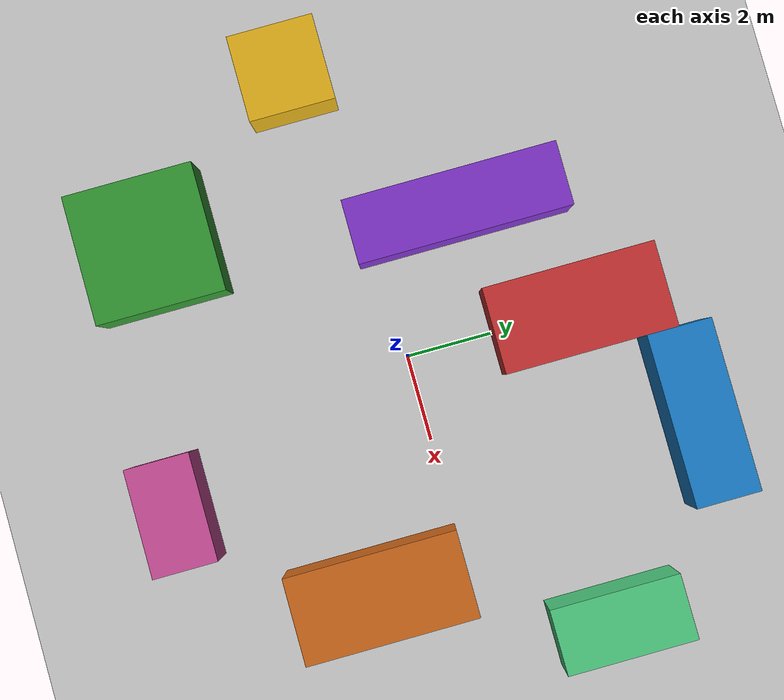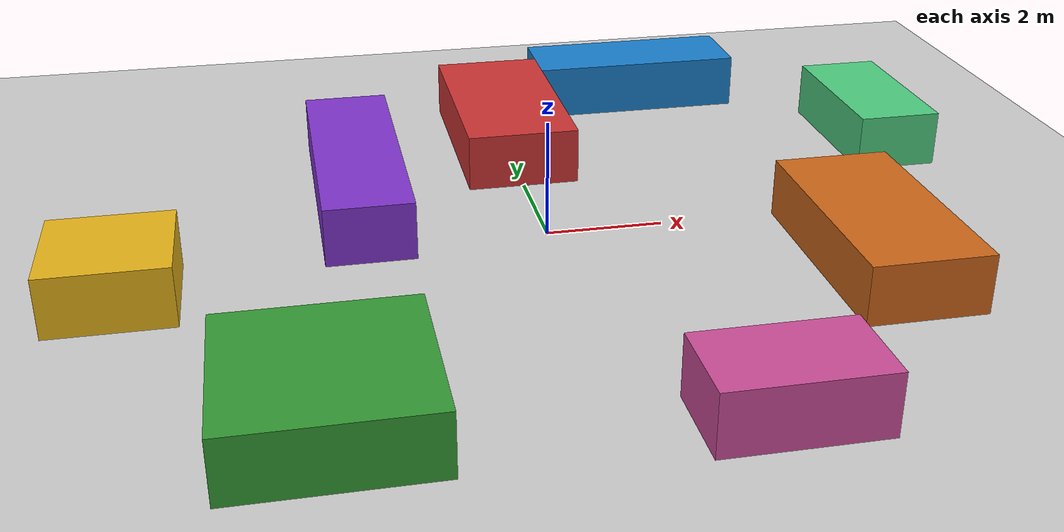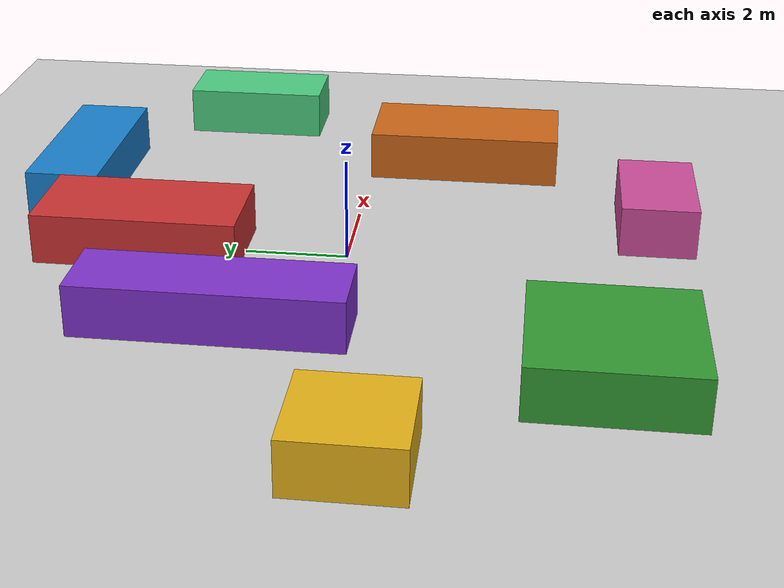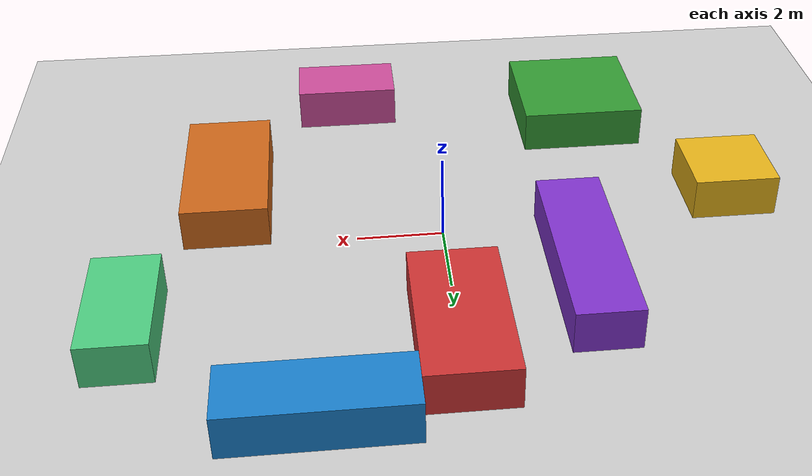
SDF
<?xml version="1.0" ?>
<sdf version="1.7">
<world name="obs_world">

  <include><uri>model://ground_plane</uri></include>
  <include><uri>model://sun</uri></include>

  <!-- obs1: cx=0, cy=4, sx=2, sy=4 -->
  <model name="obs1">
    <static>true</static>
    <pose>0 4 0.5 0 0 0</pose>
    <link name="link">
      <collision name="collision"><geometry><box><size>2 4 1</size></box></geometry></collision>
      <visual name="visual">
        <geometry><box><size>2 4 1</size></box></geometry>
        <material><ambient>0.8 0.2 0.2 1</ambient><diffuse>0.8 0.2 0.2 1</diffuse></material>
      </visual>
    </link>
  </model>

  <!-- obs2: cx=5, cy=-2, sx=2, sy=4 -->
  <model name="obs2">
    <static>true</static>
    <pose>5 -2 0.5 0 0 0</pose>
    <link name="link">
      <collision name="collision"><geometry><box><size>2 4 1</size></box></geometry></collision>
      <visual name="visual">
        <geometry><box><size>2 4 1</size></box></geometry>
        <material><ambient>0.8 0.4 0.1 1</ambient><diffuse>0.8 0.4 0.1 1</diffuse></material>
      </visual>
    </link>
  </model>

  <!-- obs3: cx=-4, cy=-5, sx=3, sy=3 -->
  <model name="obs3">
    <static>true</static>
    <pose>-4 -5 0.5 0 0 0</pose>
    <link name="link">
      <collision name="collision"><geometry><box><size>3 3 1</size></box></geometry></collision>
      <visual name="visual">
        <geometry><box><size>3 3 1</size></box></geometry>
        <material><ambient>0.2 0.6 0.2 1</ambient><diffuse>0.2 0.6 0.2 1</diffuse></material>
      </visual>
    </link>
  </model>

  <!-- obs4: cx=-3, cy=2, sx=1.5, sy=5 -->
  <model name="obs4">
    <static>true</static>
    <pose>-3 2 0.5 0 0 0</pose>
    <link name="link">
      <collision name="collision"><geometry><box><size>1.5 5 1</size></box></geometry></collision>
      <visual name="visual">
        <geometry><box><size>1.5 5 1</size></box></geometry>
        <material><ambient>0.5 0.2 0.8 1</ambient><diffuse>0.5 0.2 0.8 1</diffuse></material>
      </visual>
    </link>
  </model>

  <!-- obs5: cx=3, cy=6, sx=4, sy=1.5 -->
  <model name="obs5">
    <static>true</static>
    <pose>3 6 0.5 0 0 0</pose>
    <link name="link">
      <collision name="collision"><geometry><box><size>4 1.5 1</size></box></geometry></collision>
      <visual name="visual">
        <geometry><box><size>4 1.5 1</size></box></geometry>
        <material><ambient>0.1 0.5 0.8 1</ambient><diffuse>0.1 0.5 0.8 1</diffuse></material>
      </visual>
    </link>
  </model>

  <!-- obs6: cx=-7, cy=-1, sx=2, sy=2 -->
  <model name="obs6">
    <static>true</static>
    <pose>-7 -1 0.5 0 0 0</pose>
    <link name="link">
      <collision name="collision"><geometry><box><size>2 2 1</size></box></geometry></collision>
      <visual name="visual">
        <geometry><box><size>2 2 1</size></box></geometry>
        <material><ambient>0.9 0.7 0.1 1</ambient><diffuse>0.9 0.7 0.1 1</diffuse></material>
      </visual>
    </link>
  </model>

  <!-- obs7: cx=7, cy=3, sx=1.5, sy=3 -->
  <model name="obs7">
    <static>true</static>
    <pose>7 3 0.5 0 0 0</pose>
    <link name="link">
      <collision name="collision"><geometry><box><size>1.5 3 1</size></box></geometry></collision>
      <visual name="visual">
        <geometry><box><size>1.5 3 1</size></box></geometry>
        <material><ambient>0.3 0.8 0.5 1</ambient><diffuse>0.3 0.8 0.5 1</diffuse></material>
      </visual>
    </link>
  </model>

  <!-- obs8: cx=2, cy=-6, sx=2.5, sy=1.5 -->
  <model name="obs8">
    <static>true</static>
    <pose>2 -6 0.5 0 0 0</pose>
    <link name="link">
      <collision name="collision"><geometry><box><size>2.5 1.5 1</size></box></geometry></collision>
      <visual name="visual">
        <geometry><box><size>2.5 1.5 1</size></box></geometry>
        <material><ambient>0.8 0.3 0.6 1</ambient><diffuse>0.8 0.3 0.6 1</diffuse></material>
      </visual>
    </link>
  </model>

</world>
</sdf>
